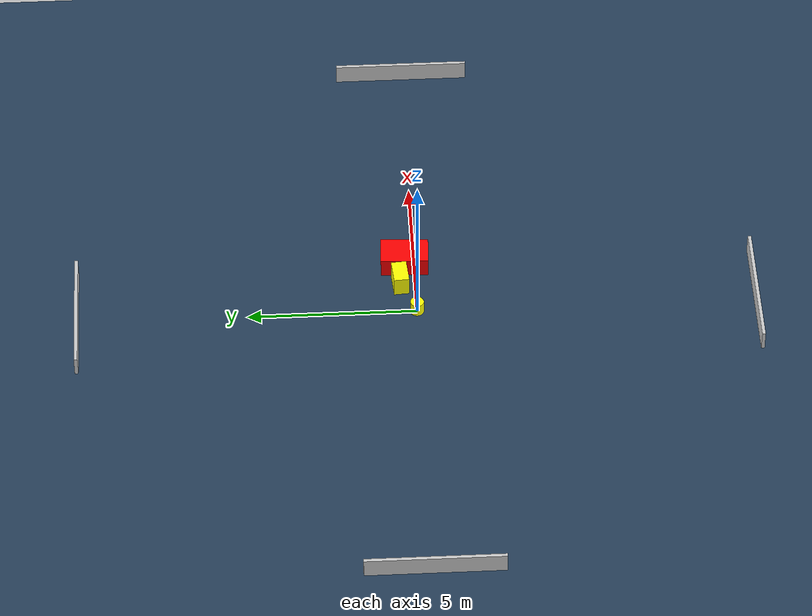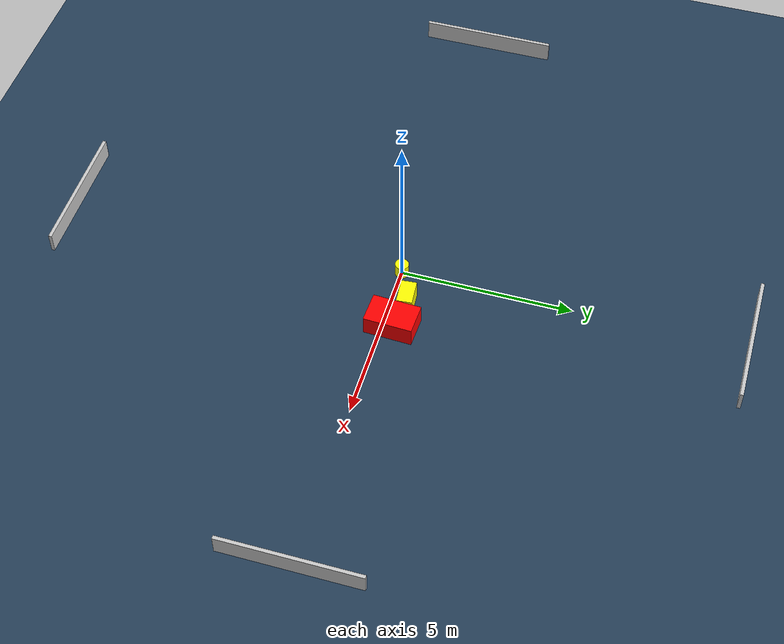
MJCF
<?xml version="1.0" ?>
<mujoco model="generated_environment">
  <option timestep="0.01" integrator="RK4" cone="elliptic"/>
  <default>
    <geom density="1"/>
  </default>
  <asset>
    <texture builtin="gradient" height="3072" name="skybox" rgb1="0.3 0.5 0.7" rgb2="0 0 0" type="skybox" width="512"/>
    <texture builtin="checker" height="300" name="groundplane" rgb1="0.2 0.3 0.4" rgb2="0.1 0.2 0.3" type="2d" width="300"/>
    <material name="groundplane" reflectance="0.2" texrepeat="5 5" texture="groundplane"/>
  </asset>
  <worldbody>
    <light dir="0 0 -1" directional="true" pos="0 0 1.5"/>
    <geom condim="3" friction="0.5 0.005 0.001" material="groundplane" name="floor" pos="0 0 0" size="0 0 0.05" type="plane"/>
    <body name="walls">
      <geom name="wall_1" condim="4" pos="-10.0 0.0 0.3" rgba="0.800000011920929 0.800000011920929 0.800000011920929 1.0" size="0.05 2.0 0.3" type="box"/>
      <geom name="wall_2" condim="4" pos="10.0 0.0 0.3" rgba="0.800000011920929 0.800000011920929 0.800000011920929 1.0" size="0.05 2.0 0.3" type="box"/>
      <geom name="wall_3" condim="4" pos="0.0 -10.0 0.3" rgba="0.800000011920929 0.800000011920929 0.800000011920929 1.0" size="2.0 0.05 0.3" type="box"/>
      <geom name="wall_4" condim="4" pos="0.0 10.0 0.3" rgba="0.800000011920929 0.800000011920929 0.800000011920929 1.0" size="2.0 0.05 0.3" type="box"/>
    </body>
    <body name="robot">
      <joint name="joint_x" type="slide" pos="0 0 0" axis="1 0 0"/>
      <joint name="joint_y" type="slide" pos="0 0 0" axis="0 1 0"/>
      <geom name="robot" type="cylinder" pos="0.0 0.0 0.2" size="0.2 0.2 0.0" mass="5.0" friction="1.0 0.005 0.0001" condim="4" rgba="1.0 1.0 0.0 1.0"/>
    </body>
    <body name="obstacle_1_movable">
      <geom name="obstacle_1_movable" condim="4" pos="1.0892065171895169 0.44858273157435496 0.3" euler="0 0 4.652283405931503" friction="0.0 0.005 0.001" rgba="1.0 1.0 0.0 1.0" size="0.3735413301421666 0.22596230431762387 0.3" type="box" mass="0.1"/>
      <joint type="free"/>
    </body>
    <body name="obstacle_2_static">
      <geom name="obstacle_2_static" condim="4" pos="1.936895637581816 0.28071751945628937 0.3" euler="0 0 267.56963140640227" friction="0.0 0.005 0.001" rgba="1.0 0.0 0.0 1.0" size="0.7024429416008 0.44931510954777876 0.3" type="box"/>
    </body>
  </worldbody>
  <actuator>
    <motor name="actuator_x" joint="joint_x" gear="1" ctrlrange="-1 1"/>
    <motor name="actuator_y" joint="joint_y" gear="1" ctrlrange="-1 1"/>
  </actuator>
</mujoco>
